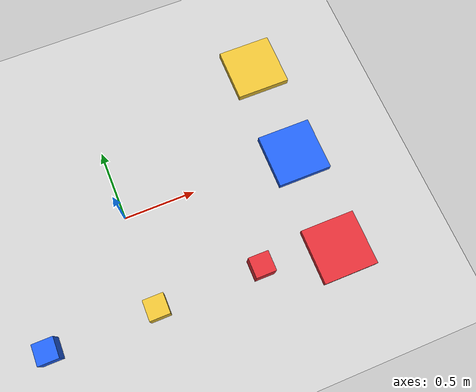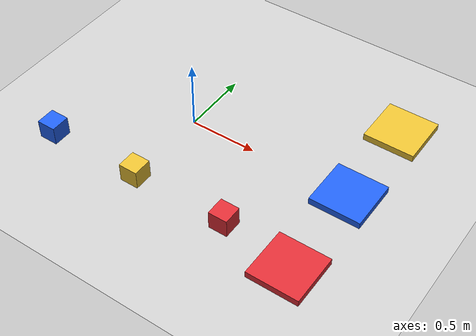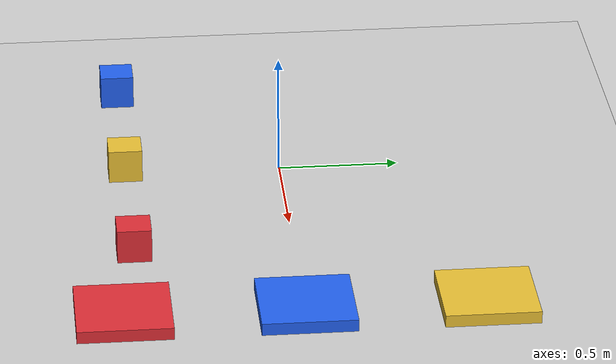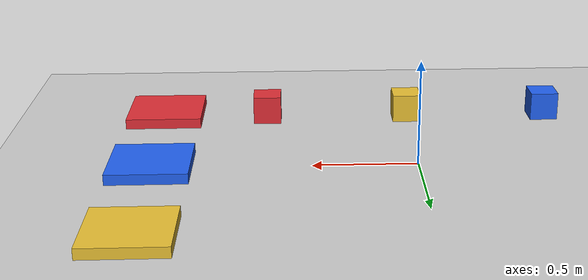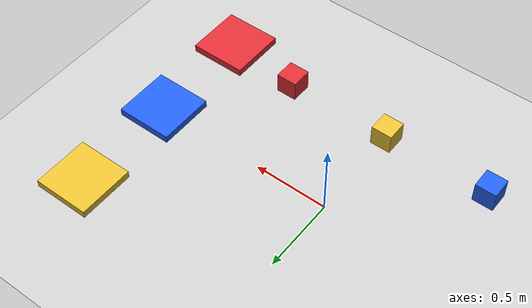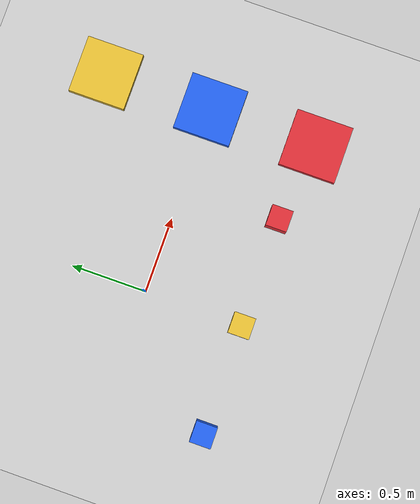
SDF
<?xml version="1.0"?>
<sdf version="1.6">
  <world name="sorting_lab">
    <include><uri>model://ground_plane</uri></include>
    <include><uri>model://sun</uri></include>
    <physics name="default_physics" type="ode">
      <max_step_size>0.001</max_step_size>
      <real_time_update_rate>500</real_time_update_rate>
    </physics>
    <plugin name="gazebo_ros_state" filename="libgazebo_ros_state.so">
      <ros><namespace>/gazebo</namespace></ros>
    </plugin>
    <model name="paper_bin">
      <static>true</static><pose>1.25 0.72 0.025 0 0 0</pose>
      <link name="body"><collision name="collision"><geometry><box><size>0.38 0.38 0.05</size></box></geometry></collision><visual name="visual"><geometry><box><size>0.38 0.38 0.05</size></box></geometry><material><ambient>0.58 0.49 0.12 1</ambient><diffuse>0.91 0.75 0.20 1</diffuse></material></visual></link>
    </model>
    <model name="plastic_bin">
      <static>true</static><pose>1.25 0 0.025 0 0 0</pose>
      <link name="body"><collision name="collision"><geometry><box><size>0.38 0.38 0.05</size></box></geometry></collision><visual name="visual"><geometry><box><size>0.38 0.38 0.05</size></box></geometry><material><ambient>0.08 0.22 0.58 1</ambient><diffuse>0.13 0.38 0.94 1</diffuse></material></visual></link>
    </model>
    <model name="metal_bin">
      <static>true</static><pose>1.25 -0.72 0.025 0 0 0</pose>
      <link name="body"><collision name="collision"><geometry><box><size>0.38 0.38 0.05</size></box></geometry></collision><visual name="visual"><geometry><box><size>0.38 0.38 0.05</size></box></geometry><material><ambient>0.54 0.13 0.12 1</ambient><diffuse>0.87 0.18 0.21 1</diffuse></material></visual></link>
    </model>
    <model name="sample_1">
      <static>false</static><pose>-0.72 -0.65 0.07 0 0 0</pose><link name="body">
        <inertial><mass>0.12</mass><inertia><ixx>0.0004</ixx><iyy>0.0004</iyy><izz>0.0004</izz><ixy>0</ixy><ixz>0</ixz><iyz>0</iyz></inertia></inertial>
        <collision name="collision"><geometry><box><size>0.14 0.14 0.14</size></box></geometry><surface><friction><ode><mu>3.0</mu><mu2>3.0</mu2></ode></friction></surface></collision>
        <visual name="visual"><geometry><box><size>0.14 0.14 0.14</size></box></geometry><material><ambient>0.08 0.22 0.58 1</ambient><diffuse>0.13 0.38 0.94 1</diffuse></material></visual>
      </link>
    </model>
    <model name="sample_2">
      <static>false</static><pose>0 -0.65 0.07 0 0 0</pose><link name="body">
        <inertial><mass>0.12</mass><inertia><ixx>0.0004</ixx><iyy>0.0004</iyy><izz>0.0004</izz><ixy>0</ixy><ixz>0</ixz><iyz>0</iyz></inertia></inertial>
        <collision name="collision"><geometry><box><size>0.14 0.14 0.14</size></box></geometry><surface><friction><ode><mu>3.0</mu><mu2>3.0</mu2></ode></friction></surface></collision>
        <visual name="visual"><geometry><box><size>0.14 0.14 0.14</size></box></geometry><material><ambient>0.58 0.49 0.12 1</ambient><diffuse>0.91 0.75 0.20 1</diffuse></material></visual>
      </link>
    </model>
    <model name="sample_3">
      <static>false</static><pose>0.72 -0.65 0.07 0 0 0</pose><link name="body">
        <inertial><mass>0.12</mass><inertia><ixx>0.0004</ixx><iyy>0.0004</iyy><izz>0.0004</izz><ixy>0</ixy><ixz>0</ixz><iyz>0</iyz></inertia></inertial>
        <collision name="collision"><geometry><box><size>0.14 0.14 0.14</size></box></geometry><surface><friction><ode><mu>3.0</mu><mu2>3.0</mu2></ode></friction></surface></collision>
        <visual name="visual"><geometry><box><size>0.14 0.14 0.14</size></box></geometry><material><ambient>0.54 0.13 0.12 1</ambient><diffuse>0.87 0.18 0.21 1</diffuse></material></visual>
      </link>
    </model>
  </world>
</sdf>
